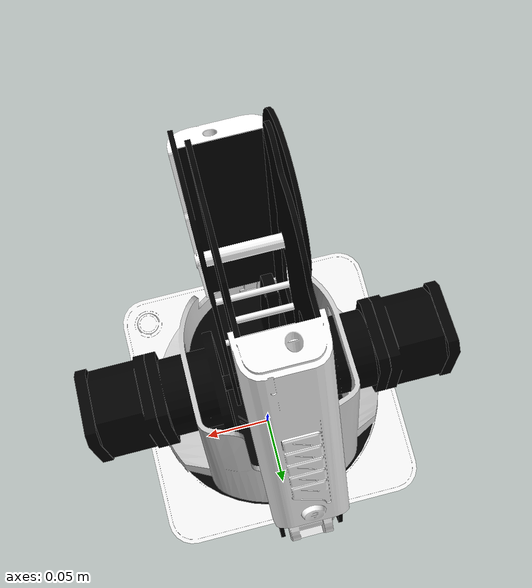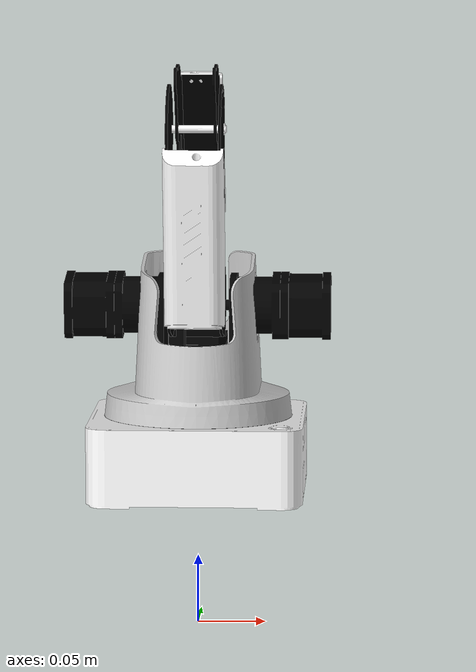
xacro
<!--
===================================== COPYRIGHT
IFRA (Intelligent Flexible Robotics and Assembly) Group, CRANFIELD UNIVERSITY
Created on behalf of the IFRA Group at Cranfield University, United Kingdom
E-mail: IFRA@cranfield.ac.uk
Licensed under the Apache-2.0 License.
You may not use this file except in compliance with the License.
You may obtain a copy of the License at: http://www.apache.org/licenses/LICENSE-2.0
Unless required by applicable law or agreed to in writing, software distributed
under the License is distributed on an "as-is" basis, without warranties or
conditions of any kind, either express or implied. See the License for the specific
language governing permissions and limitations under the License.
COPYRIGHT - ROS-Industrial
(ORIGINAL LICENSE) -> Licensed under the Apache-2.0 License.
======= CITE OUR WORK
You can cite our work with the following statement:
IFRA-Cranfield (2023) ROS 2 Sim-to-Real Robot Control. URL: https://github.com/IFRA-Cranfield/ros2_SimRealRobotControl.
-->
<?xml version="1.0" ?>

<robot name="dobot" xmlns:xacro="http://ros.org/wiki/xacro">

  <!-- Include XACRO-MACRO file of the DOBOT: -->
  <xacro:include filename="$(find ros2srrc_dobot_gazebo)/urdf/dobot_macro.urdf.xacro"/>
  <xacro:dobot />

  <!-- World link -->
  <link name="world"/>

  <!-- ===== DOBOT ROBOT ALONE ===== -->
  <joint name="world-base_link-fixed" type="fixed">
    <parent link="world"/>
    <child link="base_link"/>
    <origin xyz="0.0 0.0 0.10" rpy="0.0 0.0 0.0" />
  </joint>

</robot>

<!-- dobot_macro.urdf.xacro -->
<robot xmlns:xacro="http://ros.org/wiki/xacro">

  <!-- XACRO-MACRO of DOBOT: -->
  <xacro:macro name="dobot" params="">

    <!-- Defining the colors used in this robot -->
    <material name="Black">
        <color rgba="0 0 0 1"/>
    </material>
    <material name="White">
        <color rgba="1 1 1 1"/>
    </material>
    <material name="Grey">
        <color rgba="0.9 0.9 0.9 1"/>
    </material>

    <!-- DOBOT TRANSMISSION: -->
    <xacro:include filename="$(find ros2srrc_dobot_gazebo)/urdf/dobot_transmission.xacro" />
    <xacro:dobot_transmission />

    <!-- DOBOT GAZEBO - ROS2_CONTROL: -->
    <xacro:include filename="$(find ros2srrc_dobot_gazebo)/urdf/dobot_ros2control.xacro" />
    <xacro:dobot_ros2control />

    <!-- ***** DOBOT ROBOT .urdf SERIAL CHAIN ***** -->

    <!-- ===== LINK LIST ===== -->
    <!-- BASE LINK: -->
    <link name="base_link">
      <inertial>
        <origin xyz="0.04251794 -0.02273413 0.03329067"/>
        <mass value="2.00000000"/>
        <inertia ixx="0.00465413" ixy="0.00001311" ixz="-0.00000976" iyy="0.00468362" iyz="0.00000907" izz="0.00819820"/>
      </inertial>
      <visual>
        <origin xyz="0 0 0" rpy="0 0 0"/>
        <geometry>
          <mesh filename="file://$(find ros2srrc_dobot_gazebo)/meshes/dobot/base_link.stl"/>
        </geometry>
        <material name="White"/>
      </visual>
      <collision>
        <origin xyz="0 0 0" rpy="0 0 0"/>
        <geometry>
          <mesh filename="file://$(find ros2srrc_dobot_gazebo)/meshes/dobot/base_link.stl"/>
        </geometry>
      </collision>
    </link>
    <!-- LINK 1: -->
    <link name="link_1">
      <inertial>
        <origin xyz="0.00038037 -0.00515150 0.07917318"/>
        <mass value="0.50000000"/>
        <inertia ixx="0.00102692" ixy="-0.00000172" ixz="0.00000050" iyy="0.00162168" iyz="0.00001162" izz="0.00138833"/>
      </inertial>
      <visual>
        <origin xyz="0 0 0" rpy="0 0 0"/>
        <geometry>
          <mesh filename="file://$(find ros2srrc_dobot_gazebo)/meshes/dobot/link_1.dae"/>
        </geometry>
      </visual>
      <collision>
        <origin xyz="0 0 0" rpy="0 0 0"/>
        <geometry>
          <mesh filename="file://$(find ros2srrc_dobot_gazebo)/meshes/dobot/link_1.dae"/>
        </geometry>
      </collision>
    </link>
    <!-- LINK 2: -->
    <link name="link_2">
      <inertial>
        <origin xyz="0.04442809 0.07223258 -0.01117110"/>
        <mass value="0.10000000"/>
        <inertia ixx="0.00025719" ixy="-0.00003432" ixz="-0.00000000" iyy="0.00007311" iyz="0.00000000" izz="0.00030016"/>
      </inertial>
      <visual>
        <origin xyz="0 0 0" rpy="0 0 0"/>
        <geometry>
          <mesh filename="file://$(find ros2srrc_dobot_gazebo)/meshes/dobot/link_2.dae"/>
        </geometry>
      </visual>
      <collision>
        <origin xyz="0 0 0" rpy="0 0 0"/>
        <geometry>
          <mesh filename="file://$(find ros2srrc_dobot_gazebo)/meshes/dobot/link_2.dae"/>
        </geometry>
      </collision>
    </link>
    <!-- LINK 3: -->
    <link name="link_3">
      <inertial>
        <origin xyz="0.07174762 -0.03105705 0.00003808"/>
        <mass value="0.10000000"/>
        <inertia ixx="0.00022763" ixy="0.00010014" ixz="-0.00000000" iyy="0.00011279" iyz="0.00000000" izz="0.00032257"/>
      </inertial>
      <visual>
        <origin xyz="0 0 0" rpy="0 0 0"/>
        <geometry>
          <mesh filename="file://$(find ros2srrc_dobot_gazebo)/meshes/dobot/link_5.dae"/>
        </geometry>
      </visual>
      <collision>
        <origin xyz="0 0 0" rpy="0 0 0"/>
        <geometry>
          <mesh filename="file://$(find ros2srrc_dobot_gazebo)/meshes/dobot/link_5.dae"/>
        </geometry>
      </collision>
    </link>
    <!-- LINK 4: -->
    <link name="link_4">
      <inertial>
        <origin xyz="-0.01733982 0.01278737 0.00085845"/>
        <mass value="0.01000000"/>
        <inertia ixx="0.00000191" ixy="0.00000050" ixz="0.00000001" iyy="0.00000203" iyz="-0.00000001" izz="0.00000320"/>
      </inertial>
      <visual>
        <origin xyz="0 0 0" rpy="0 0 0"/>
        <geometry>
          <mesh filename="file://$(find ros2srrc_dobot_gazebo)/meshes/dobot/link_6.stl"/>
        </geometry>
        <material name="Grey"/>
      </visual>
      <collision>
        <origin xyz="0 0 0" rpy="0 0 0"/>
        <geometry>
          <mesh filename="file://$(find ros2srrc_dobot_gazebo)/meshes/dobot/link_6.stl"/>
        </geometry>
      </collision>
    </link>

    <!-- ===== JOINT LIST ===== -->
    <!-- JOINT 1: -->
    <joint name="joint_1" type ="revolute">
      <origin xyz="0 0 0.024" rpy="0 0 0"/>
      <parent link="base_link"/>
      <child link="link_1"/>
      <axis xyz="0 0 1"/>
      <limit effort="150.0" lower="-2.0944" upper="2.0944" velocity="3.15"/>
      <dynamics damping="1.0" friction="1.0"/>
    </joint>
    <!-- JOINT 2: -->
    <joint name="joint_2" type="revolute">
      <origin xyz="-0.01175 0 0.114" rpy="1.570796325 0 -1.570796325"/>
      <parent link="link_1"/>
      <child link="link_2"/>
      <axis xyz="0 0 1"/>
      <limit effort="150.0" lower="-0.0872665" upper="1.570796325" velocity="3.15"/>
      <dynamics damping="1.0" friction="1.0"/>
    </joint>
    <!-- JOINT 3: -->
    <joint name="joint_3" type ="revolute">
      <origin xyz="0.02699 0.13228 -0.01175" rpy="0 3.14159265 0"/>
      <parent link="link_2"/>
      <child link="link_3"/>
      <axis xyz="0 0 1"/>
      <limit effort="150.0" lower="-0.261799" upper="1.570796325" velocity="3.15"/>
      <dynamics damping="1.0" friction="1.0"/>
    </joint>
    <!-- JOINT 4: -->
    <joint name="joint_4" type ="revolute">
      <origin xyz="0.07431 -0.12684 0.0" rpy="0 3.14159265 0"/>
      <parent link="link_3"/>
      <child link="link_4"/>
      <axis xyz="0 0 1"/>
      <limit effort="150.0" lower="-2.44346" upper="2.44346" velocity="3.15"/>
      <dynamics damping="1.0" friction="1.0"/>
    </joint>

  </xacro:macro>
</robot>
